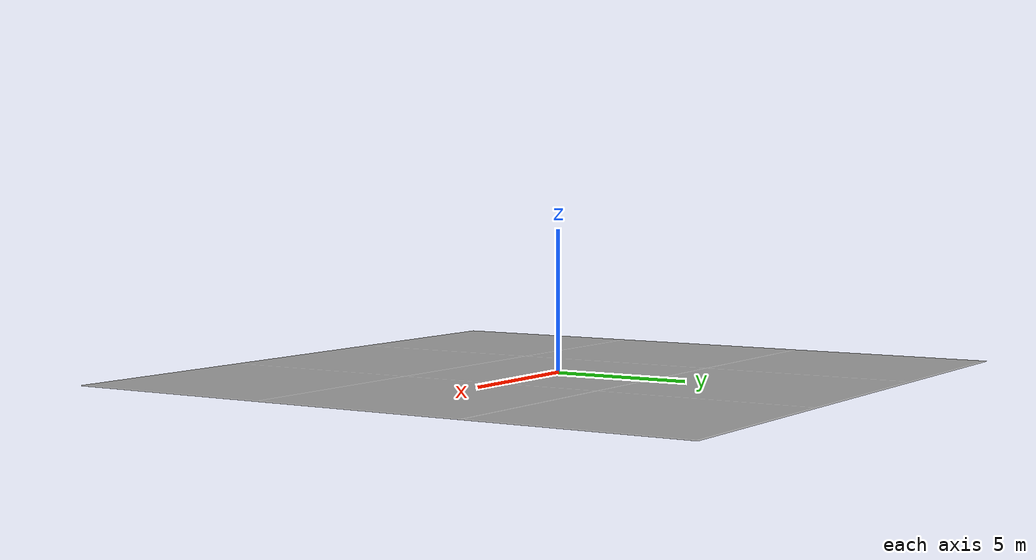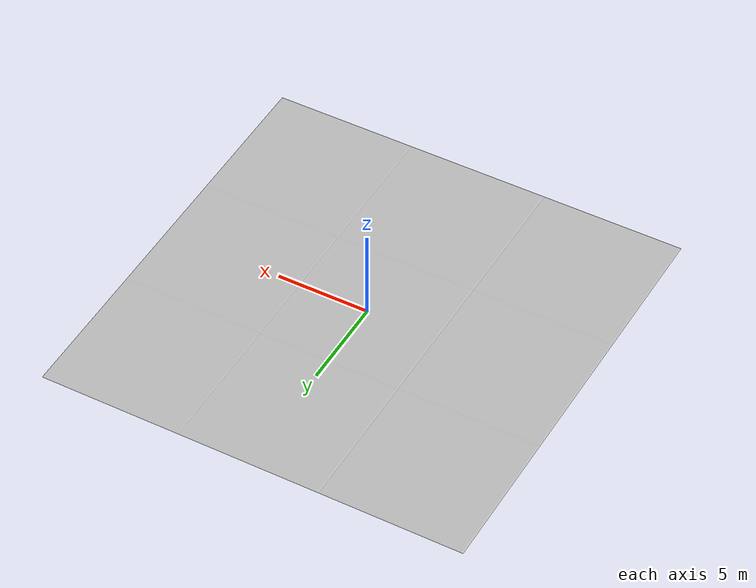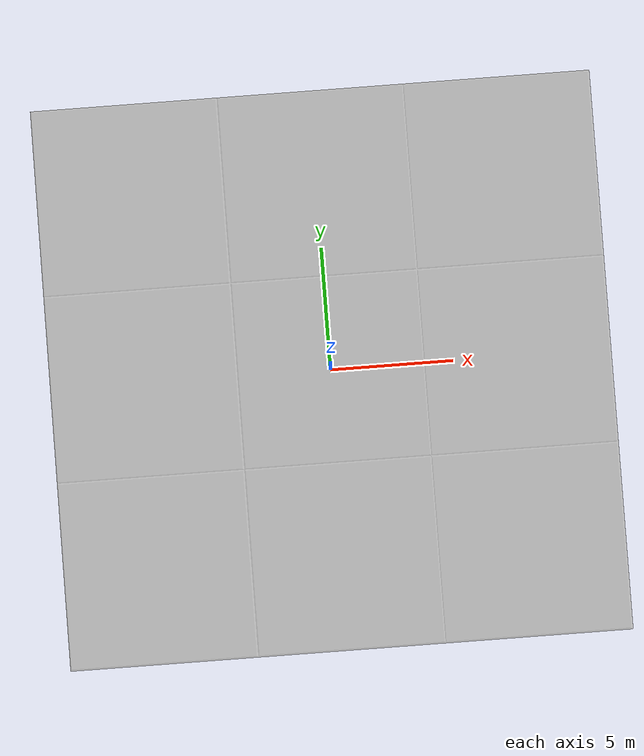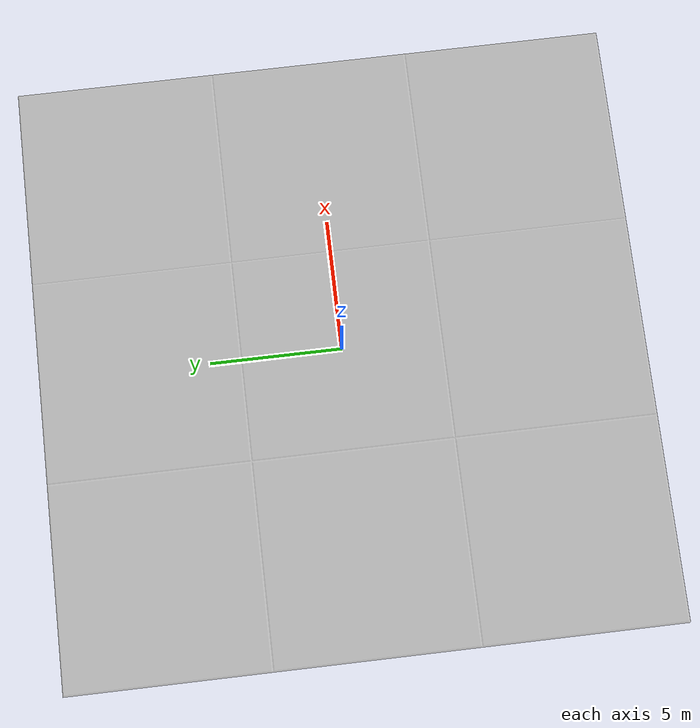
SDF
<?xml version="1.0" ?>
<sdf version="1.5">
  <model name='largeconcreteground'>
    <pose>0 0 0 0 0 0</pose>
    <static>1</static>
    <link name='body'>
       <collision name="largeconcreteground-collision">
          <pose>0 0 0.016 0 0 0</pose>
          <geometry>
            <box>
              <size>22.938 22.954 0.016</size>
            </box>
          </geometry>
        </collision>
        <visual name='largeconcreteground'>
        <cast_shadows>1</cast_shadows>
        <geometry>
          <mesh>
            <uri>model://large_concrete_ground/meshes/largeconcreteground.dae</uri>
          </mesh>
        </geometry>
      </visual>
      <velocity_decay>
        <linear>0</linear>
        <angular>0</angular>
      </velocity_decay>
      <self_collide>0</self_collide>
      <kinematic>0</kinematic>
      <gravity>1</gravity>
    </link>
  </model>
</sdf>
